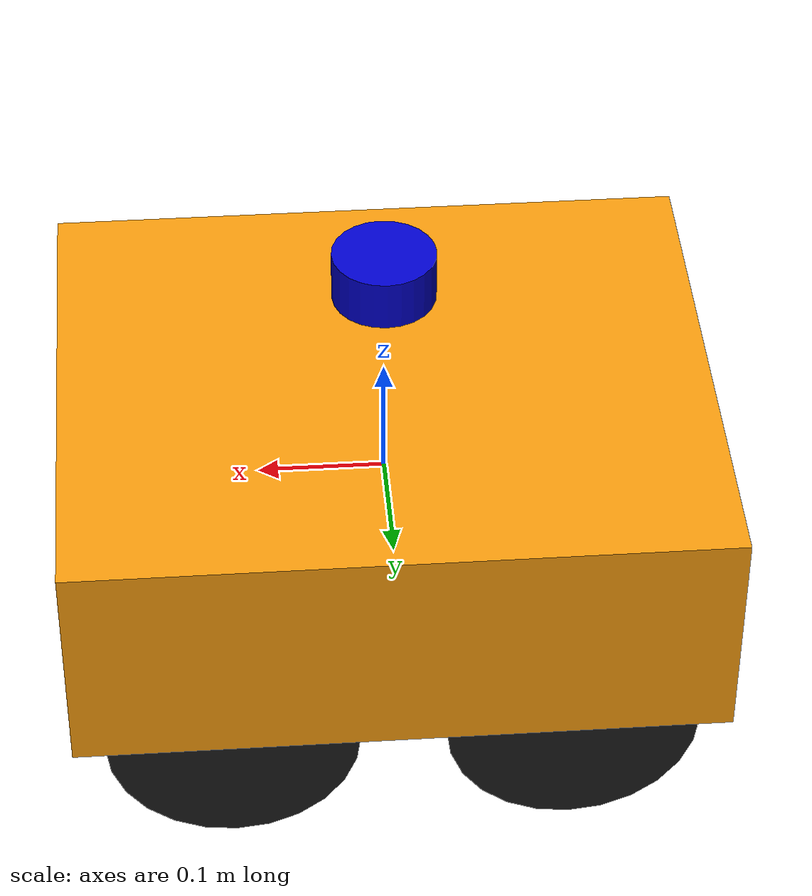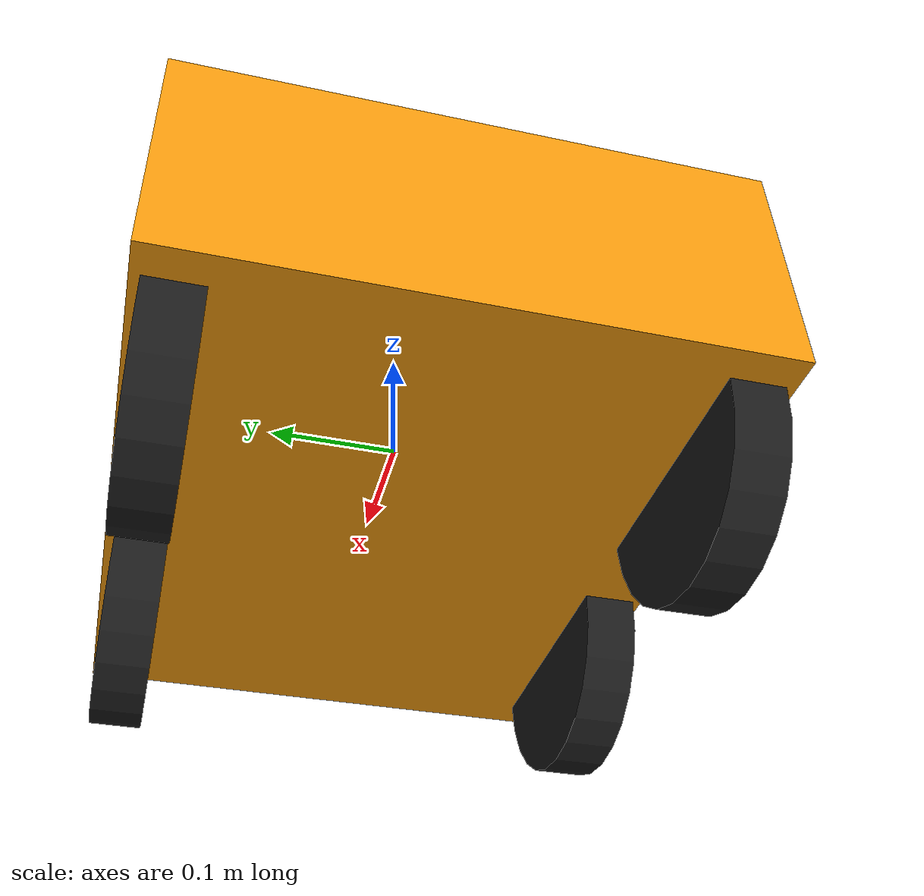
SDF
<?xml version="1.0"?>
<sdf version="1.9">
  <model name="follower_1">
    <static>false</static>

    <link name="base_link">
      <inertial>
        <mass>17.0</mass>
        <inertia>
          <ixx>0.3099</ixx>
          <iyy>0.4136</iyy>
          <izz>0.6275</izz>
          <ixy>0</ixy><ixz>0</ixz><iyz>0</iyz>
        </inertia>
      </inertial>

      <collision name="chassis_collision">
        <geometry><box><size>0.508 0.43 0.184</size></box></geometry>
      </collision>

      <visual name="chassis_visual">
        <geometry><box><size>0.508 0.43 0.184</size></box></geometry>
        <material>
          <ambient>0.85 0.55 0.05 1</ambient>
          <diffuse>0.95 0.6 0.05 1</diffuse>  <!-- Jackal yellow, to visually tell followers from the leader -->
        </material>
      </visual>

      <sensor name="imu_sensor" type="imu">
        <always_on>true</always_on>
        <update_rate>100</update_rate>
        <topic>follower_1/imu/data</topic>
        <imu>
          <angular_velocity>
            <x><noise type="gaussian"><mean>0</mean><stddev>0.001</stddev></noise></x>
            <y><noise type="gaussian"><mean>0</mean><stddev>0.001</stddev></noise></y>
            <z><noise type="gaussian"><mean>0</mean><stddev>0.001</stddev></noise></z>
          </angular_velocity>
          <linear_acceleration>
            <x><noise type="gaussian"><mean>0</mean><stddev>0.01</stddev></noise></x>
            <y><noise type="gaussian"><mean>0</mean><stddev>0.01</stddev></noise></y>
            <z><noise type="gaussian"><mean>0</mean><stddev>0.01</stddev></noise></z>
          </linear_acceleration>
        </imu>
      </sensor>

      <sensor name="navsat_sensor" type="navsat">
        <always_on>true</always_on>
        <update_rate>5</update_rate>
        <topic>follower_1/navsat</topic>
        <navsat>
          <position_sensing>
            <horizontal>
              <noise type="gaussian"><mean>0</mean><stddev>0.0000045</stddev></noise>
            </horizontal>
            <vertical>
              <noise type="gaussian"><mean>0</mean><stddev>1.0</stddev></noise>
            </vertical>
          </position_sensing>
        </navsat>
      </sensor>
    </link>

    <link name="lidar_link">
      <pose relative_to="base_link">0 0 0.192 0 0 0</pose>
      <inertial>
        <mass>0.3</mass>
        <inertia><ixx>0.0005</ixx><iyy>0.0005</iyy><izz>0.0005</izz><ixy>0</ixy><ixz>0</ixz><iyz>0</iyz></inertia>
      </inertial>
      <collision name="lidar_collision">
        <geometry><cylinder><radius>0.04</radius><length>0.04</length></cylinder></geometry>
      </collision>
      <visual name="lidar_visual">
        <geometry><cylinder><radius>0.04</radius><length>0.04</length></cylinder></geometry>
        <material><ambient>0.0 0.0 0.8 1</ambient><diffuse>0.0 0.0 0.8 1</diffuse></material>
      </visual>
      <sensor name="lidar_sensor" type="gpu_lidar">
        <always_on>true</always_on>
        <update_rate>10</update_rate>
        <topic>follower_1/scan</topic>
        <lidar>
          <scan>
            <horizontal>
              <samples>360</samples>
              <resolution>1</resolution>
              <min_angle>-3.14159</min_angle>
              <max_angle>3.14159</max_angle>
            </horizontal>
          </scan>
          <range><min>0.15</min><max>30.0</max><resolution>0.01</resolution></range>
          <noise><type>gaussian</type><mean>0</mean><stddev>0.01</stddev></noise>
        </lidar>
      </sensor>
    </link>
    <joint name="lidar_joint" type="fixed">
      <parent>base_link</parent>
      <child>lidar_link</child>
    </joint>

    <link name="camera_link">
      <pose relative_to="base_link">0.214 0 0.020 0 0 0</pose>
      <inertial>
        <mass>0.15</mass>
        <inertia><ixx>0.0001</ixx><iyy>0.0001</iyy><izz>0.0001</izz><ixy>0</ixy><ixz>0</ixz><iyz>0</iyz></inertia>
      </inertial>
      <collision name="camera_collision">
        <geometry><box><size>0.03 0.06 0.03</size></box></geometry>
      </collision>
      <visual name="camera_visual">
        <geometry><box><size>0.03 0.06 0.03</size></box></geometry>
        <material><ambient>0.8 0.0 0.0 1</ambient><diffuse>0.8 0.0 0.0 1</diffuse></material>
      </visual>
      <sensor name="camera_sensor" type="camera">
        <always_on>true</always_on>
        <update_rate>30</update_rate>
        <topic>follower_1/camera/image</topic>
        <camera>
          <horizontal_fov>1.3962634</horizontal_fov>
          <image><width>640</width><height>480</height><format>R8G8B8</format></image>
          <clip><near>0.1</near><far>100.0</far></clip>
          <noise><type>gaussian</type><mean>0</mean><stddev>0.005</stddev></noise>
        </camera>
      </sensor>
    </link>
    <joint name="camera_joint" type="fixed">
      <parent>base_link</parent>
      <child>camera_link</child>
    </joint>

    <link name="front_left_wheel">
      <pose relative_to="base_link">0.131 0.188 -0.092 -1.5708 0 0</pose>
      <inertial>
        <mass>0.7</mass>
        <inertia><ixx>0.002</ixx><iyy>0.002</iyy><izz>0.001</izz><ixy>0</ixy><ixz>0</ixz><iyz>0</iyz></inertia>
      </inertial>
      <collision name="collision">
        <geometry><cylinder><radius>0.098</radius><length>0.04</length></cylinder></geometry>
        <surface>
          <friction><ode><mu>1.0</mu><mu2>0.5</mu2></ode></friction>
          <contact><ode><kp>1e6</kp><kd>500</kd></ode></contact>
        </surface>
      </collision>
      <visual name="visual">
        <geometry><cylinder><radius>0.098</radius><length>0.04</length></cylinder></geometry>
        <material><ambient>0.1 0.1 0.1 1</ambient><diffuse>0.1 0.1 0.1 1</diffuse></material>
      </visual>
    </link>
    <joint name="front_left_wheel_joint" type="revolute">
      <parent>base_link</parent>
      <child>front_left_wheel</child>
      <axis><xyz>0 0 1</xyz><limit><lower>-1e16</lower><upper>1e16</upper></limit></axis>
    </joint>

    <link name="front_right_wheel">
      <pose relative_to="base_link">0.131 -0.188 -0.092 -1.5708 0 0</pose>
      <inertial>
        <mass>0.7</mass>
        <inertia><ixx>0.002</ixx><iyy>0.002</iyy><izz>0.001</izz><ixy>0</ixy><ixz>0</ixz><iyz>0</iyz></inertia>
      </inertial>
      <collision name="collision">
        <geometry><cylinder><radius>0.098</radius><length>0.04</length></cylinder></geometry>
        <surface>
          <friction><ode><mu>1.0</mu><mu2>0.5</mu2></ode></friction>
          <contact><ode><kp>1e6</kp><kd>500</kd></ode></contact>
        </surface>
      </collision>
      <visual name="visual">
        <geometry><cylinder><radius>0.098</radius><length>0.04</length></cylinder></geometry>
        <material><ambient>0.1 0.1 0.1 1</ambient><diffuse>0.1 0.1 0.1 1</diffuse></material>
      </visual>
    </link>
    <joint name="front_right_wheel_joint" type="revolute">
      <parent>base_link</parent>
      <child>front_right_wheel</child>
      <axis><xyz>0 0 1</xyz><limit><lower>-1e16</lower><upper>1e16</upper></limit></axis>
    </joint>

    <link name="rear_left_wheel">
      <pose relative_to="base_link">-0.131 0.188 -0.092 -1.5708 0 0</pose>
      <inertial>
        <mass>0.7</mass>
        <inertia><ixx>0.002</ixx><iyy>0.002</iyy><izz>0.001</izz><ixy>0</ixy><ixz>0</ixz><iyz>0</iyz></inertia>
      </inertial>
      <collision name="collision">
        <geometry><cylinder><radius>0.098</radius><length>0.04</length></cylinder></geometry>
        <surface>
          <friction><ode><mu>1.0</mu><mu2>0.5</mu2></ode></friction>
          <contact><ode><kp>1e6</kp><kd>500</kd></ode></contact>
        </surface>
      </collision>
      <visual name="visual">
        <geometry><cylinder><radius>0.098</radius><length>0.04</length></cylinder></geometry>
        <material><ambient>0.1 0.1 0.1 1</ambient><diffuse>0.1 0.1 0.1 1</diffuse></material>
      </visual>
    </link>
    <joint name="rear_left_wheel_joint" type="revolute">
      <parent>base_link</parent>
      <child>rear_left_wheel</child>
      <axis><xyz>0 0 1</xyz><limit><lower>-1e16</lower><upper>1e16</upper></limit></axis>
    </joint>

    <link name="rear_right_wheel">
      <pose relative_to="base_link">-0.131 -0.188 -0.092 -1.5708 0 0</pose>
      <inertial>
        <mass>0.7</mass>
        <inertia><ixx>0.002</ixx><iyy>0.002</iyy><izz>0.001</izz><ixy>0</ixy><ixz>0</ixz><iyz>0</iyz></inertia>
      </inertial>
      <collision name="collision">
        <geometry><cylinder><radius>0.098</radius><length>0.04</length></cylinder></geometry>
        <surface>
          <friction><ode><mu>1.0</mu><mu2>0.5</mu2></ode></friction>
          <contact><ode><kp>1e6</kp><kd>500</kd></ode></contact>
        </surface>
      </collision>
      <visual name="visual">
        <geometry><cylinder><radius>0.098</radius><length>0.04</length></cylinder></geometry>
        <material><ambient>0.1 0.1 0.1 1</ambient><diffuse>0.1 0.1 0.1 1</diffuse></material>
      </visual>
    </link>
    <joint name="rear_right_wheel_joint" type="revolute">
      <parent>base_link</parent>
      <child>rear_right_wheel</child>
      <axis><xyz>0 0 1</xyz><limit><lower>-1e16</lower><upper>1e16</upper></limit></axis>
    </joint>

    <plugin filename="gz-sim-diff-drive-system"
            name="gz::sim::systems::DiffDrive">
      <left_joint>front_left_wheel_joint</left_joint>
      <left_joint>rear_left_wheel_joint</left_joint>
      <right_joint>front_right_wheel_joint</right_joint>
      <right_joint>rear_right_wheel_joint</right_joint>
      <wheel_separation>0.375</wheel_separation>
      <wheel_radius>0.098</wheel_radius>
      <max_linear_acceleration>1.0</max_linear_acceleration>
      <max_angular_acceleration>2.0</max_angular_acceleration>
      <max_linear_velocity>2.0</max_linear_velocity>
      <min_linear_velocity>-2.0</min_linear_velocity>
      <max_angular_velocity>2.0</max_angular_velocity>
      <min_angular_velocity>-2.0</min_angular_velocity>
      <topic>follower_1/cmd_vel</topic>
      <odom_topic>follower_1/odom</odom_topic>
      <tf_topic>follower_1/tf</tf_topic>
      <odom_publish_frequency>50</odom_publish_frequency>
    </plugin>

    <plugin filename="gz-sim-joint-state-publisher-system"
            name="gz::sim::systems::JointStatePublisher">
      <topic>follower_1/joint_states</topic>
    </plugin>

  </model>
</sdf>
